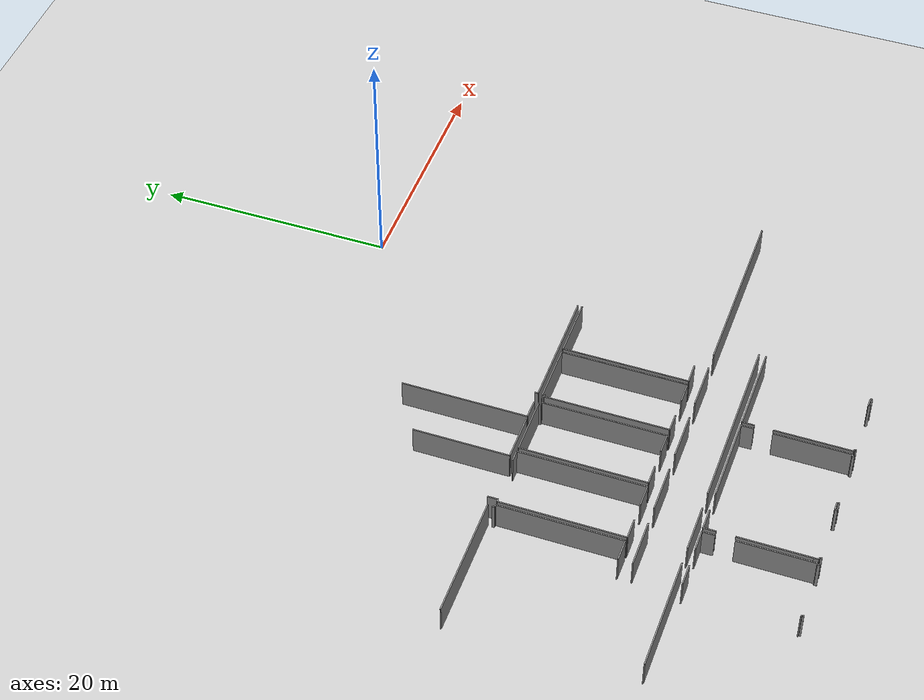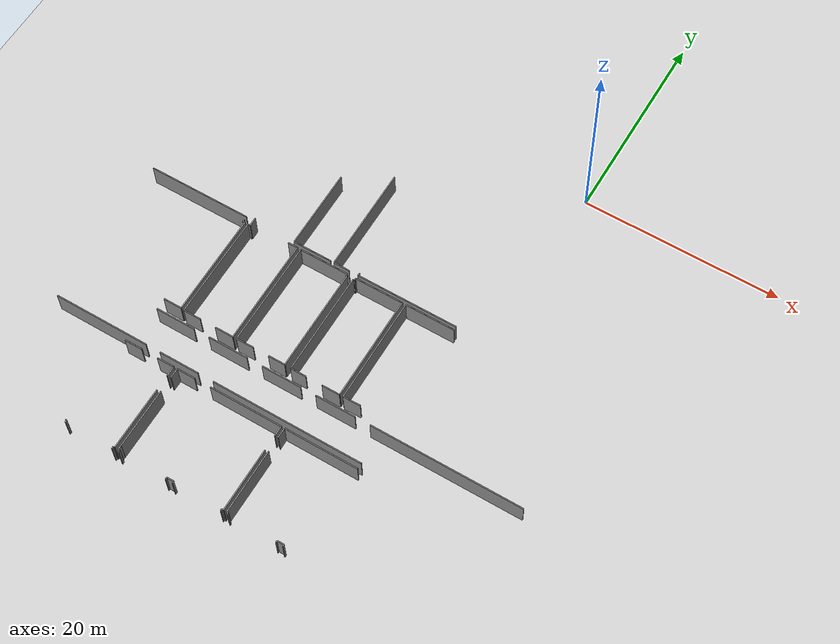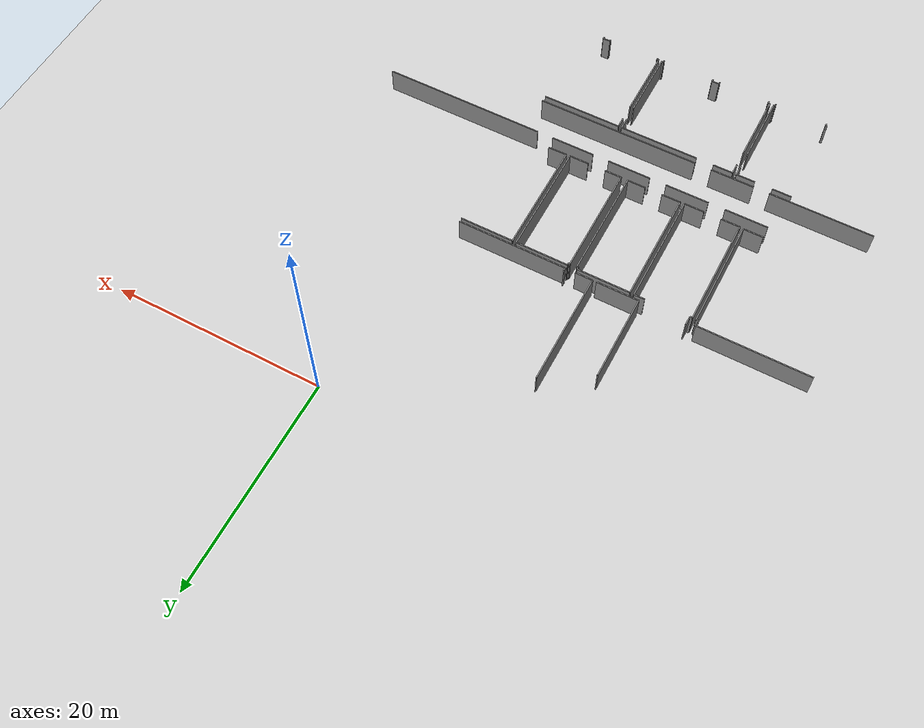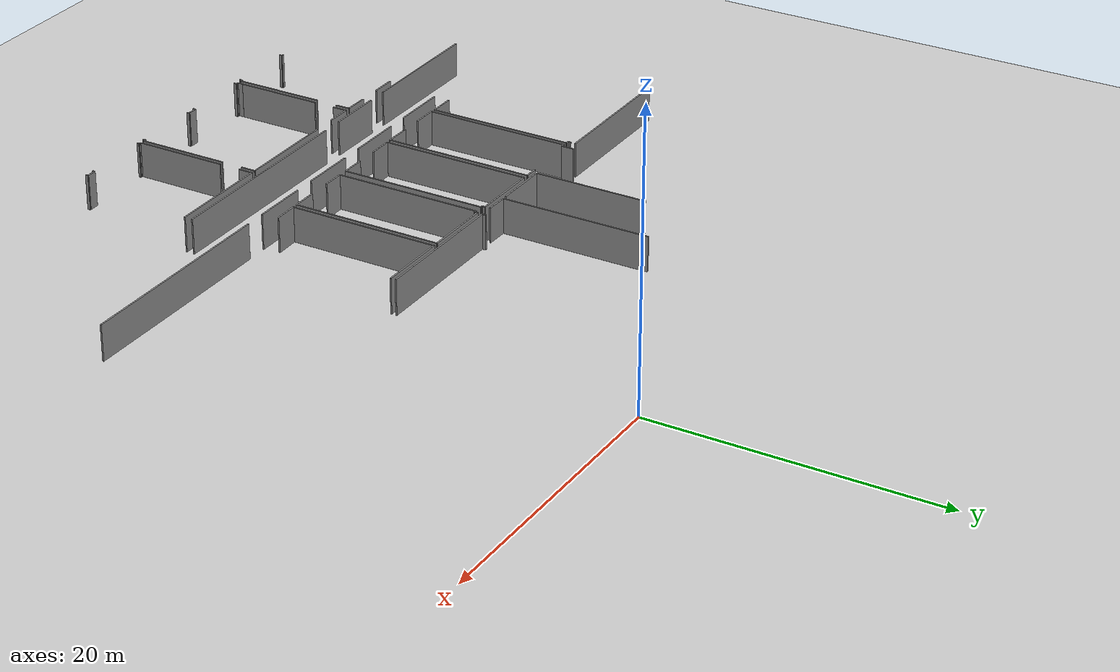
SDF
<sdf version="1.6">
 <world name="default">
  <model name="ground_plane">
   <static>1</static>
   <link name="link">
    <collision name="collision">
     <geometry><plane><normal>0 0 1</normal><size>100 100</size></plane></geometry>
     <surface><friction><ode><mu>100</mu><mu2>50</mu2></ode></friction></surface>
    </collision>
    <visual name="visual">
     <cast_shadows>0</cast_shadows>
     <geometry><plane><normal>0 0 1</normal><size>100 100</size></plane></geometry>
     <material>
      <script><uri>file://media/materials/scripts/gazebo.material</uri><name>Gazebo/Grey</name></script>
     </material>
    </visual>
   </link>
  </model>
  <model name="50015847">
   <static>1</static>
   <link name="Wall_1012">
    <collision name="Wall_1012_Collision">
     <geometry><box><size>10.5931255402 0.1 2.5</size></box></geometry>
     <pose>5.29656277012 0 1.25 0 0 0</pose>
    </collision>
    <visual name="Wall_1012_Visual">
     <pose>5.29656277012 0 1.25 0 0 0</pose>
     <geometry><box><size>10.5931255402 0.1 2.5</size></box></geometry>
     <material>
      <script><uri>file://media/materials/scripts/gazebo.material</uri><name>Gazebo/Grey</name></script>
      <ambient>1 1 1 1</ambient>
     </material>
    </visual>
    <pose>116.273452992 -62.5344485687 0 0 0 1.57079632679</pose>
   </link>
   <link name="Wall_1020">
    <collision name="Wall_1020_Collision">
     <geometry><box><size>10.2867748004 0.1 2.5</size></box></geometry>
     <pose>5.14338740021 0 1.25 0 0 0</pose>
    </collision>
    <visual name="Wall_1020_Visual">
     <pose>5.14338740021 0 1.25 0 0 0</pose>
     <geometry><box><size>10.2867748004 0.1 2.5</size></box></geometry>
     <material>
      <script><uri>file://media/materials/scripts/gazebo.material</uri><name>Gazebo/Grey</name></script>
      <ambient>1 1 1 1</ambient>
     </material>
    </visual>
    <pose>129.155692276 -62.5626684293 0 0 0 3.14159265359</pose>
   </link>
   <link name="Wall_1021">
    <collision name="Wall_1021_Collision">
     <geometry><box><size>0.283724004678 0.1 2.5</size></box></geometry>
     <pose>0.141862002339 0 1.25 0 0 0</pose>
    </collision>
    <visual name="Wall_1021_Visual">
     <pose>0.141862002339 0 1.25 0 0 0</pose>
     <geometry><box><size>0.283724004678 0.1 2.5</size></box></geometry>
     <material>
      <script><uri>file://media/materials/scripts/gazebo.material</uri><name>Gazebo/Grey</name></script>
      <ambient>1 1 1 1</ambient>
     </material>
    </visual>
    <pose>118.868917476 -62.5626684293 0 0 0 1.57079632679</pose>
   </link>
   <link name="Wall_1024">
    <collision name="Wall_1024_Collision">
     <geometry><box><size>1.63395369529 0.1 2.5</size></box></geometry>
     <pose>0.816976847647 0 1.25 0 0 0</pose>
    </collision>
    <visual name="Wall_1024_Visual">
     <pose>0.816976847647 0 1.25 0 0 0</pose>
     <geometry><box><size>1.63395369529 0.1 2.5</size></box></geometry>
     <material>
      <script><uri>file://media/materials/scripts/gazebo.material</uri><name>Gazebo/Grey</name></script>
      <ambient>1 1 1 1</ambient>
     </material>
    </visual>
    <pose>117.907154116 -62.5631768953 0 0 0 3.12400965411</pose>
   </link>
   <link name="Wall_1031">
    <collision name="Wall_1031_Collision">
     <geometry><box><size>8.06884629074 0.1 2.5</size></box></geometry>
     <pose>4.03442314537 0 1.25 0 0 0</pose>
    </collision>
    <visual name="Wall_1031_Visual">
     <pose>4.03442314537 0 1.25 0 0 0</pose>
     <geometry><box><size>8.06884629074 0.1 2.5</size></box></geometry>
     <material>
      <script><uri>file://media/materials/scripts/gazebo.material</uri><name>Gazebo/Grey</name></script>
      <ambient>1 1 1 1</ambient>
     </material>
    </visual>
    <pose>111.981237606 -62.5469059846 0 0 0 1.57079632679</pose>
   </link>
   <link name="Wall_1035">
    <collision name="Wall_1035_Collision">
     <geometry><box><size>3.94340786998 0.1 2.5</size></box></geometry>
     <pose>1.97170393499 0 1.25 0 0 0</pose>
    </collision>
    <visual name="Wall_1035_Visual">
     <pose>1.97170393499 0 1.25 0 0 0</pose>
     <geometry><box><size>3.94340786998 0.1 2.5</size></box></geometry>
     <material>
      <script><uri>file://media/materials/scripts/gazebo.material</uri><name>Gazebo/Grey</name></script>
      <ambient>1 1 1 1</ambient>
     </material>
    </visual>
    <pose>115.924645345 -62.5458890527 0 0 0 -3.14133477209</pose>
   </link>
   <link name="Wall_1042">
    <collision name="Wall_1042_Collision">
     <geometry><box><size>10.4080439315 0.1 2.5</size></box></geometry>
     <pose>5.20402196573 0 1.25 0 0 0</pose>
    </collision>
    <visual name="Wall_1042_Visual">
     <pose>5.20402196573 0 1.25 0 0 0</pose>
     <geometry><box><size>10.4080439315 0.1 2.5</size></box></geometry>
     <material>
      <script><uri>file://media/materials/scripts/gazebo.material</uri><name>Gazebo/Grey</name></script>
      <ambient>1 1 1 1</ambient>
     </material>
    </visual>
    <pose>106.791834037 -62.5560583719 0 0 0 3.14159265359</pose>
   </link>
   <link name="Wall_1344">
    <collision name="Wall_1344_Collision">
     <geometry><box><size>1.80454568567 0.1 2.5</size></box></geometry>
     <pose>0.902272842833 0 1.25 0 0 0</pose>
    </collision>
    <visual name="Wall_1344_Visual">
     <pose>0.902272842833 0 1.25 0 0 0</pose>
     <geometry><box><size>1.80454568567 0.1 2.5</size></box></geometry>
     <material>
      <script><uri>file://media/materials/scripts/gazebo.material</uri><name>Gazebo/Grey</name></script>
      <ambient>1 1 1 1</ambient>
     </material>
    </visual>
    <pose>104.546194132 -78.6472263182 0 0 0 0.0</pose>
   </link>
   <link name="Wall_1345">
    <collision name="Wall_1345_Collision">
     <geometry><box><size>1.75954644837 0.1 2.5</size></box></geometry>
     <pose>0.879773224183 0 1.25 0 0 0</pose>
    </collision>
    <visual name="Wall_1345_Visual">
     <pose>0.879773224183 0 1.25 0 0 0</pose>
     <geometry><box><size>1.75954644837 0.1 2.5</size></box></geometry>
     <material>
      <script><uri>file://media/materials/scripts/gazebo.material</uri><name>Gazebo/Grey</name></script>
      <ambient>1 1 1 1</ambient>
     </material>
    </visual>
    <pose>108.003508415 -78.6472263182 0 0 0 0.0</pose>
   </link>
   <link name="Wall_1346">
    <collision name="Wall_1346_Collision">
     <geometry><box><size>1.04718564092 0.1 2.5</size></box></geometry>
     <pose>0.523592820461 0 1.25 0 0 0</pose>
    </collision>
    <visual name="Wall_1346_Visual">
     <pose>0.523592820461 0 1.25 0 0 0</pose>
     <geometry><box><size>1.04718564092 0.1 2.5</size></box></geometry>
     <material>
      <script><uri>file://media/materials/scripts/gazebo.material</uri><name>Gazebo/Grey</name></script>
      <ambient>1 1 1 1</ambient>
     </material>
    </visual>
    <pose>109.763054863 -78.6472263182 0 0 0 -1.57079632679</pose>
   </link>
   <link name="Wall_1347">
    <collision name="Wall_1347_Collision">
     <geometry><box><size>6.37234962119 0.1 2.5</size></box></geometry>
     <pose>3.1861748106 0 1.25 0 0 0</pose>
    </collision>
    <visual name="Wall_1347_Visual">
     <pose>3.1861748106 0 1.25 0 0 0</pose>
     <geometry><box><size>6.37234962119 0.1 2.5</size></box></geometry>
     <material>
      <script><uri>file://media/materials/scripts/gazebo.material</uri><name>Gazebo/Grey</name></script>
      <ambient>1 1 1 1</ambient>
     </material>
    </visual>
    <pose>109.763054863 -81.2520974221 0 0 0 -1.57079632679</pose>
   </link>
   <link name="Wall_1348">
    <collision name="Wall_1348_Collision">
     <geometry><box><size>0.142116235318 0.1 2.5</size></box></geometry>
     <pose>0.071058117659 0 1.25 0 0 0</pose>
    </collision>
    <visual name="Wall_1348_Visual">
     <pose>0.071058117659 0 1.25 0 0 0</pose>
     <geometry><box><size>0.142116235318 0.1 2.5</size></box></geometry>
     <material>
      <script><uri>file://media/materials/scripts/gazebo.material</uri><name>Gazebo/Grey</name></script>
      <ambient>1 1 1 1</ambient>
     </material>
    </visual>
    <pose>109.763054863 -87.6244470433 0 0 0 3.14159265359</pose>
   </link>
   <link name="Wall_1349">
    <collision name="Wall_1349_Collision">
     <geometry><box><size>0.223470788631 0.1 2.5</size></box></geometry>
     <pose>0.111735394315 0 1.25 0 0 0</pose>
    </collision>
    <visual name="Wall_1349_Visual">
     <pose>0.111735394315 0 1.25 0 0 0</pose>
     <geometry><box><size>0.223470788631 0.1 2.5</size></box></geometry>
     <material>
      <script><uri>file://media/materials/scripts/gazebo.material</uri><name>Gazebo/Grey</name></script>
      <ambient>1 1 1 1</ambient>
     </material>
    </visual>
    <pose>109.620938628 -87.6244470433 0 0 0 -1.57079632679</pose>
   </link>
   <link name="Wall_1350">
    <collision name="Wall_1350_Collision">
     <geometry><box><size>0.186098540703 0.1 2.5</size></box></geometry>
     <pose>0.0930492703513 0 1.25 0 0 0</pose>
    </collision>
    <visual name="Wall_1350_Visual">
     <pose>0.0930492703513 0 1.25 0 0 0</pose>
     <geometry><box><size>0.186098540703 0.1 2.5</size></box></geometry>
     <material>
      <script><uri>file://media/materials/scripts/gazebo.material</uri><name>Gazebo/Grey</name></script>
      <ambient>1 1 1 1</ambient>
     </material>
    </visual>
    <pose>104.699242386 -87.8479178319 0 0 0 1.57079632679</pose>
   </link>
   <link name="Wall_1351">
    <collision name="Wall_1351_Collision">
     <geometry><box><size>0.154602082631 0.1 2.5</size></box></geometry>
     <pose>0.0773010413155 0 1.25 0 0 0</pose>
    </collision>
    <visual name="Wall_1351_Visual">
     <pose>0.0773010413155 0 1.25 0 0 0</pose>
     <geometry><box><size>0.154602082631 0.1 2.5</size></box></geometry>
     <material>
      <script><uri>file://media/materials/scripts/gazebo.material</uri><name>Gazebo/Grey</name></script>
      <ambient>1 1 1 1</ambient>
     </material>
    </visual>
    <pose>104.699242386 -87.6618192912 0 0 0 2.99969559899</pose>
   </link>
   <link name="Wall_1352">
    <collision name="Wall_1352_Collision">
     <geometry><box><size>6.02379620684 0.1 2.5</size></box></geometry>
     <pose>3.01189810342 0 1.25 0 0 0</pose>
    </collision>
    <visual name="Wall_1352_Visual">
     <pose>3.01189810342 0 1.25 0 0 0</pose>
     <geometry><box><size>6.02379620684 0.1 2.5</size></box></geometry>
     <material>
      <script><uri>file://media/materials/scripts/gazebo.material</uri><name>Gazebo/Grey</name></script>
      <ambient>1 1 1 1</ambient>
     </material>
    </visual>
    <pose>110.138811207 -87.2158946459 0 0 0 1.57079632679</pose>
   </link>
   <link name="Wall_1353">
    <collision name="Wall_1353_Collision">
     <geometry><box><size>1.02710123557 0.1 2.5</size></box></geometry>
     <pose>0.513550617786 0 1.25 0 0 0</pose>
    </collision>
    <visual name="Wall_1353_Visual">
     <pose>0.513550617786 0 1.25 0 0 0</pose>
     <geometry><box><size>1.02710123557 0.1 2.5</size></box></geometry>
     <material>
      <script><uri>file://media/materials/scripts/gazebo.material</uri><name>Gazebo/Grey</name></script>
      <ambient>1 1 1 1</ambient>
     </material>
    </visual>
    <pose>110.138811207 -79.6725479229 0 0 0 1.57079632679</pose>
   </link>
   <link name="Wall_1354">
    <collision name="Wall_1354_Collision">
     <geometry><box><size>1.8503076219 0.1 2.5</size></box></geometry>
     <pose>0.925153810952 0 1.25 0 0 0</pose>
    </collision>
    <visual name="Wall_1354_Visual">
     <pose>0.925153810952 0 1.25 0 0 0</pose>
     <geometry><box><size>1.8503076219 0.1 2.5</size></box></geometry>
     <material>
      <script><uri>file://media/materials/scripts/gazebo.material</uri><name>Gazebo/Grey</name></script>
      <ambient>1 1 1 1</ambient>
     </material>
    </visual>
    <pose>110.138811207 -78.6454466873 0 0 0 0.0</pose>
   </link>
   <link name="Wall_1355">
    <collision name="Wall_1355_Collision">
     <geometry><box><size>7.40478974933 0.1 2.5</size></box></geometry>
     <pose>3.70239487466 0 1.25 0 0 0</pose>
    </collision>
    <visual name="Wall_1355_Visual">
     <pose>3.70239487466 0 1.25 0 0 0</pose>
     <geometry><box><size>7.40478974933 0.1 2.5</size></box></geometry>
     <material>
      <script><uri>file://media/materials/scripts/gazebo.material</uri><name>Gazebo/Grey</name></script>
      <ambient>1 1 1 1</ambient>
     </material>
    </visual>
    <pose>113.627650379 -78.6454466873 0 0 0 0.0</pose>
   </link>
   <link name="Wall_1356">
    <collision name="Wall_1356_Collision">
     <geometry><box><size>1.05430416434 0.1 2.5</size></box></geometry>
     <pose>0.527152082168 0 1.25 0 0 0</pose>
    </collision>
    <visual name="Wall_1356_Visual">
     <pose>0.527152082168 0 1.25 0 0 0</pose>
     <geometry><box><size>1.05430416434 0.1 2.5</size></box></geometry>
     <material>
      <script><uri>file://media/materials/scripts/gazebo.material</uri><name>Gazebo/Grey</name></script>
      <ambient>1 1 1 1</ambient>
     </material>
    </visual>
    <pose>121.032440128 -78.6454466873 0 0 0 -1.57079632679</pose>
   </link>
   <link name="Wall_1357">
    <collision name="Wall_1357_Collision">
     <geometry><box><size>6.40438297656 0.1 2.5</size></box></geometry>
     <pose>3.20219148828 0 1.25 0 0 0</pose>
    </collision>
    <visual name="Wall_1357_Visual">
     <pose>3.20219148828 0 1.25 0 0 0</pose>
     <geometry><box><size>6.40438297656 0.1 2.5</size></box></geometry>
     <material>
      <script><uri>file://media/materials/scripts/gazebo.material</uri><name>Gazebo/Grey</name></script>
      <ambient>1 1 1 1</ambient>
     </material>
    </visual>
    <pose>121.032440128 -81.228962221 0 0 0 -1.57079632679</pose>
   </link>
   <link name="Wall_1358">
    <collision name="Wall_1358_Collision">
     <geometry><box><size>0.177200386434 0.1 2.5</size></box></geometry>
     <pose>0.0886001932171 0 1.25 0 0 0</pose>
    </collision>
    <visual name="Wall_1358_Visual">
     <pose>0.0886001932171 0 1.25 0 0 0</pose>
     <geometry><box><size>0.177200386434 0.1 2.5</size></box></geometry>
     <material>
      <script><uri>file://media/materials/scripts/gazebo.material</uri><name>Gazebo/Grey</name></script>
      <ambient>1 1 1 1</ambient>
     </material>
    </visual>
    <pose>121.032440128 -87.6333451975 0 0 0 3.14159265359</pose>
   </link>
   <link name="Wall_1359">
    <collision name="Wall_1359_Collision">
     <geometry><box><size>0.19525092795 0.1 2.5</size></box></geometry>
     <pose>0.0976254639752 0 1.25 0 0 0</pose>
    </collision>
    <visual name="Wall_1359_Visual">
     <pose>0.0976254639752 0 1.25 0 0 0</pose>
     <geometry><box><size>0.19525092795 0.1 2.5</size></box></geometry>
     <material>
      <script><uri>file://media/materials/scripts/gazebo.material</uri><name>Gazebo/Grey</name></script>
      <ambient>1 1 1 1</ambient>
     </material>
    </visual>
    <pose>120.855239742 -87.6333451975 0 0 0 -1.57079632679</pose>
   </link>
   <link name="Wall_1360">
    <collision name="Wall_1360_Collision">
     <geometry><box><size>0.207454110947 0.1 2.5</size></box></geometry>
     <pose>0.103727055474 0 1.25 0 0 0</pose>
    </collision>
    <visual name="Wall_1360_Visual">
     <pose>0.103727055474 0 1.25 0 0 0</pose>
     <geometry><box><size>0.207454110947 0.1 2.5</size></box></geometry>
     <material>
      <script><uri>file://media/materials/scripts/gazebo.material</uri><name>Gazebo/Grey</name></script>
      <ambient>1 1 1 1</ambient>
     </material>
    </visual>
    <pose>115.902781309 -87.8285961255 0 0 0 1.57079632679</pose>
   </link>
   <link name="Wall_1361">
    <collision name="Wall_1361_Collision">
     <geometry><box><size>0.697615294656 0.1 2.5</size></box></geometry>
     <pose>0.348807647328 0 1.25 0 0 0</pose>
    </collision>
    <visual name="Wall_1361_Visual">
     <pose>0.348807647328 0 1.25 0 0 0</pose>
     <geometry><box><size>0.697615294656 0.1 2.5</size></box></geometry>
     <material>
      <script><uri>file://media/materials/scripts/gazebo.material</uri><name>Gazebo/Grey</name></script>
      <ambient>1 1 1 1</ambient>
     </material>
    </visual>
    <pose>115.902781309 -87.6211420145 0 0 0 3.14159265359</pose>
   </link>
   <link name="Wall_1362">
    <collision name="Wall_1362_Collision">
     <geometry><box><size>0.213555702446 0.1 2.5</size></box></geometry>
     <pose>0.106777851223 0 1.25 0 0 0</pose>
    </collision>
    <visual name="Wall_1362_Visual">
     <pose>0.106777851223 0 1.25 0 0 0</pose>
     <geometry><box><size>0.213555702446 0.1 2.5</size></box></geometry>
     <material>
      <script><uri>file://media/materials/scripts/gazebo.material</uri><name>Gazebo/Grey</name></script>
      <ambient>1 1 1 1</ambient>
     </material>
    </visual>
    <pose>115.205166014 -87.6211420145 0 0 0 -1.57079632679</pose>
   </link>
   <link name="Wall_1363">
    <collision name="Wall_1363_Collision">
     <geometry><box><size>0.205674480094 0.1 2.5</size></box></geometry>
     <pose>0.102837240047 0 1.25 0 0 0</pose>
    </collision>
    <visual name="Wall_1363_Visual">
     <pose>0.102837240047 0 1.25 0 0 0</pose>
     <geometry><box><size>0.205674480094 0.1 2.5</size></box></geometry>
     <material>
      <script><uri>file://media/materials/scripts/gazebo.material</uri><name>Gazebo/Grey</name></script>
      <ambient>1 1 1 1</ambient>
     </material>
    </visual>
    <pose>110.316774292 -87.834697717 0 0 0 1.57079632679</pose>
   </link>
   <link name="Wall_1364">
    <collision name="Wall_1364_Collision">
     <geometry><box><size>0.185844307724 0.1 2.5</size></box></geometry>
     <pose>0.0929221538618 0 1.25 0 0 0</pose>
    </collision>
    <visual name="Wall_1364_Visual">
     <pose>0.0929221538618 0 1.25 0 0 0</pose>
     <geometry><box><size>0.185844307724 0.1 2.5</size></box></geometry>
     <material>
      <script><uri>file://media/materials/scripts/gazebo.material</uri><name>Gazebo/Grey</name></script>
      <ambient>1 1 1 1</ambient>
     </material>
    </visual>
    <pose>110.316774292 -87.6290232369 0 0 0 3.14159265359</pose>
   </link>
   <link name="Wall_1365">
    <collision name="Wall_1365_Collision">
     <geometry><box><size>0.413203758939 0.1 2.5</size></box></geometry>
     <pose>0.206601879469 0 1.25 0 0 0</pose>
    </collision>
    <visual name="Wall_1365_Visual">
     <pose>0.206601879469 0 1.25 0 0 0</pose>
     <geometry><box><size>0.413203758939 0.1 2.5</size></box></geometry>
     <material>
      <script><uri>file://media/materials/scripts/gazebo.material</uri><name>Gazebo/Grey</name></script>
      <ambient>1 1 1 1</ambient>
     </material>
    </visual>
    <pose>110.130929984 -87.6290232369 0 0 0 1.55172171743</pose>
   </link>
   <link name="Wall_1366">
    <collision name="Wall_1366_Collision">
     <geometry><box><size>6.45802613515 0.1 2.5</size></box></geometry>
     <pose>3.22901306758 0 1.25 0 0 0</pose>
    </collision>
    <visual name="Wall_1366_Visual">
     <pose>3.22901306758 0 1.25 0 0 0</pose>
     <geometry><box><size>6.45802613515 0.1 2.5</size></box></geometry>
     <material>
      <script><uri>file://media/materials/scripts/gazebo.material</uri><name>Gazebo/Grey</name></script>
      <ambient>1 1 1 1</ambient>
     </material>
    </visual>
    <pose>121.364976865 -87.6391925561 0 0 0 1.57079632679</pose>
   </link>
   <link name="Wall_1367">
    <collision name="Wall_1367_Collision">
     <geometry><box><size>1.02633853663 0.1 2.5</size></box></geometry>
     <pose>0.513169268317 0 1.25 0 0 0</pose>
    </collision>
    <visual name="Wall_1367_Visual">
     <pose>0.513169268317 0 1.25 0 0 0</pose>
     <geometry><box><size>1.02633853663 0.1 2.5</size></box></geometry>
     <material>
      <script><uri>file://media/materials/scripts/gazebo.material</uri><name>Gazebo/Grey</name></script>
      <ambient>1 1 1 1</ambient>
     </material>
    </visual>
    <pose>121.364976865 -79.6766156506 0 0 0 1.57079632679</pose>
   </link>
   <link name="Wall_1368">
    <collision name="Wall_1368_Collision">
     <geometry><box><size>7.45004321961 0.1 2.5</size></box></geometry>
     <pose>3.7250216098 0 1.25 0 0 0</pose>
    </collision>
    <visual name="Wall_1368_Visual">
     <pose>3.7250216098 0 1.25 0 0 0</pose>
     <geometry><box><size>7.45004321961 0.1 2.5</size></box></geometry>
     <material>
      <script><uri>file://media/materials/scripts/gazebo.material</uri><name>Gazebo/Grey</name></script>
      <ambient>1 1 1 1</ambient>
     </material>
    </visual>
    <pose>121.364976865 -78.6502771139 0 0 0 0.0</pose>
   </link>
   <link name="Wall_1374">
    <collision name="Wall_1374_Collision">
     <geometry><box><size>0.194233996034 0.1 2.5</size></box></geometry>
     <pose>0.097116998017 0 1.25 0 0 0</pose>
    </collision>
    <visual name="Wall_1374_Visual">
     <pose>0.097116998017 0 1.25 0 0 0</pose>
     <geometry><box><size>0.194233996034 0.1 2.5</size></box></geometry>
     <material>
      <script><uri>file://media/materials/scripts/gazebo.material</uri><name>Gazebo/Grey</name></script>
      <ambient>1 1 1 1</ambient>
     </material>
    </visual>
    <pose>127.121828444 -87.8329180861 0 0 0 1.57079632679</pose>
   </link>
   <link name="Wall_1375">
    <collision name="Wall_1375_Collision">
     <geometry><box><size>0.693801799969 0.1 2.5</size></box></geometry>
     <pose>0.346900899985 0 1.25 0 0 0</pose>
    </collision>
    <visual name="Wall_1375_Visual">
     <pose>0.346900899985 0 1.25 0 0 0</pose>
     <geometry><box><size>0.693801799969 0.1 2.5</size></box></geometry>
     <material>
      <script><uri>file://media/materials/scripts/gazebo.material</uri><name>Gazebo/Grey</name></script>
      <ambient>1 1 1 1</ambient>
     </material>
    </visual>
    <pose>127.121828444 -87.6386840901 0 0 0 3.14159265359</pose>
   </link>
   <link name="Wall_1376">
    <collision name="Wall_1376_Collision">
     <geometry><box><size>0.185335841765 0.1 2.5</size></box></geometry>
     <pose>0.0926679208827 0 1.25 0 0 0</pose>
    </collision>
    <visual name="Wall_1376_Visual">
     <pose>0.0926679208827 0 1.25 0 0 0</pose>
     <geometry><box><size>0.185335841765 0.1 2.5</size></box></geometry>
     <material>
      <script><uri>file://media/materials/scripts/gazebo.material</uri><name>Gazebo/Grey</name></script>
      <ambient>1 1 1 1</ambient>
     </material>
    </visual>
    <pose>126.428026644 -87.6386840901 0 0 0 -1.57079632679</pose>
   </link>
   <link name="Wall_1377">
    <collision name="Wall_1377_Collision">
     <geometry><box><size>0.152031321503 0.1 2.5</size></box></geometry>
     <pose>0.0760156607515 0 1.25 0 0 0</pose>
    </collision>
    <visual name="Wall_1377_Visual">
     <pose>0.0760156607515 0 1.25 0 0 0</pose>
     <geometry><box><size>0.152031321503 0.1 2.5</size></box></geometry>
     <material>
      <script><uri>file://media/materials/scripts/gazebo.material</uri><name>Gazebo/Grey</name></script>
      <ambient>1 1 1 1</ambient>
     </material>
    </visual>
    <pose>121.543194183 -87.8240199319 0 0 0 1.57079632679</pose>
   </link>
   <link name="Wall_1378">
    <collision name="Wall_1378_Collision">
     <geometry><box><size>0.180505415162 0.1 2.5</size></box></geometry>
     <pose>0.0902527075812 0 1.25 0 0 0</pose>
    </collision>
    <visual name="Wall_1378_Visual">
     <pose>0.0902527075812 0 1.25 0 0 0</pose>
     <geometry><box><size>0.180505415162 0.1 2.5</size></box></geometry>
     <material>
      <script><uri>file://media/materials/scripts/gazebo.material</uri><name>Gazebo/Grey</name></script>
      <ambient>1 1 1 1</ambient>
     </material>
    </visual>
    <pose>121.543194183 -87.6719886104 0 0 0 3.14159265359</pose>
   </link>
   <link name="Wall_1379">
    <collision name="Wall_1379_Collision">
     <geometry><box><size>0.0328757747428 0.1 2.5</size></box></geometry>
     <pose>0.0164378873714 0 1.25 0 0 0</pose>
    </collision>
    <visual name="Wall_1379_Visual">
     <pose>0.0164378873714 0 1.25 0 0 0</pose>
     <geometry><box><size>0.0328757747428 0.1 2.5</size></box></geometry>
     <material>
      <script><uri>file://media/materials/scripts/gazebo.material</uri><name>Gazebo/Grey</name></script>
      <ambient>1 1 1 1</ambient>
     </material>
    </visual>
    <pose>121.362688768 -87.6719886104 0 0 0 1.50114175307</pose>
   </link>
   <link name="Wall_1628">
    <collision name="Wall_1628_Collision">
     <geometry><box><size>10.5816850562 0.1 2.5</size></box></geometry>
     <pose>5.29084252809 0 1.25 0 0 0</pose>
    </collision>
    <visual name="Wall_1628_Visual">
     <pose>5.29084252809 0 1.25 0 0 0</pose>
     <geometry><box><size>10.5816850562 0.1 2.5</size></box></geometry>
     <material>
      <script><uri>file://media/materials/scripts/gazebo.material</uri><name>Gazebo/Grey</name></script>
      <ambient>1 1 1 1</ambient>
     </material>
    </visual>
    <pose>124.128997814 -73.5048558499 0 0 0 1.57079632679</pose>
   </link>
   <link name="Wall_1629">
    <collision name="Wall_1629_Collision">
     <geometry><box><size>5.03966034474 0.1 2.5</size></box></geometry>
     <pose>2.51983017237 0 1.25 0 0 0</pose>
    </collision>
    <visual name="Wall_1629_Visual">
     <pose>2.51983017237 0 1.25 0 0 0</pose>
     <geometry><box><size>5.03966034474 0.1 2.5</size></box></geometry>
     <material>
      <script><uri>file://media/materials/scripts/gazebo.material</uri><name>Gazebo/Grey</name></script>
      <ambient>1 1 1 1</ambient>
     </material>
    </visual>
    <pose>124.128997814 -62.9231707937 0 0 0 0.0</pose>
   </link>
   <link name="Wall_1635">
    <collision name="Wall_1635_Collision">
     <geometry><box><size>1.75711557878 0.1 2.5</size></box></geometry>
     <pose>0.878557789391 0 1.25 0 0 0</pose>
    </collision>
    <visual name="Wall_1635_Visual">
     <pose>0.878557789391 0 1.25 0 0 0</pose>
     <geometry><box><size>1.75711557878 0.1 2.5</size></box></geometry>
     <material>
      <script><uri>file://media/materials/scripts/gazebo.material</uri><name>Gazebo/Grey</name></script>
      <ambient>1 1 1 1</ambient>
     </material>
    </visual>
    <pose>125.885747699 -73.4690089998 0 0 0 -3.1211902751</pose>
   </link>
   <link name="Wall_1636">
    <collision name="Wall_1636_Collision">
     <geometry><box><size>10.3472822495 0.1 2.5</size></box></geometry>
     <pose>5.17364112473 0 1.25 0 0 0</pose>
    </collision>
    <visual name="Wall_1636_Visual">
     <pose>5.17364112473 0 1.25 0 0 0</pose>
     <geometry><box><size>10.3472822495 0.1 2.5</size></box></geometry>
     <material>
      <script><uri>file://media/materials/scripts/gazebo.material</uri><name>Gazebo/Grey</name></script>
      <ambient>1 1 1 1</ambient>
     </material>
    </visual>
    <pose>118.699089846 -73.4814664158 0 0 0 1.57079632679</pose>
   </link>
   <link name="Wall_1637">
    <collision name="Wall_1637_Collision">
     <geometry><box><size>0.1472008949 0.1 2.5</size></box></geometry>
     <pose>0.07360044745 0 1.25 0 0 0</pose>
    </collision>
    <visual name="Wall_1637_Visual">
     <pose>0.07360044745 0 1.25 0 0 0</pose>
     <geometry><box><size>0.1472008949 0.1 2.5</size></box></geometry>
     <material>
      <script><uri>file://media/materials/scripts/gazebo.material</uri><name>Gazebo/Grey</name></script>
      <ambient>1 1 1 1</ambient>
     </material>
    </visual>
    <pose>118.699089846 -63.1341841664 0 0 0 0.0</pose>
   </link>
   <link name="Wall_1638">
    <collision name="Wall_1638_Collision">
     <geometry><box><size>0.20948797478 0.1 2.5</size></box></geometry>
     <pose>0.10474398739 0 1.25 0 0 0</pose>
    </collision>
    <visual name="Wall_1638_Visual">
     <pose>0.10474398739 0 1.25 0 0 0</pose>
     <geometry><box><size>0.20948797478 0.1 2.5</size></box></geometry>
     <material>
      <script><uri>file://media/materials/scripts/gazebo.material</uri><name>Gazebo/Grey</name></script>
      <ambient>1 1 1 1</ambient>
     </material>
    </visual>
    <pose>118.846290741 -63.1341841664 0 0 0 1.57079632679</pose>
   </link>
   <link name="Wall_1639">
    <collision name="Wall_1639_Collision">
     <geometry><box><size>4.91534041796 0.1 2.5</size></box></geometry>
     <pose>2.45767020898 0 1.25 0 0 0</pose>
    </collision>
    <visual name="Wall_1639_Visual">
     <pose>2.45767020898 0 1.25 0 0 0</pose>
     <geometry><box><size>4.91534041796 0.1 2.5</size></box></geometry>
     <material>
      <script><uri>file://media/materials/scripts/gazebo.material</uri><name>Gazebo/Grey</name></script>
      <ambient>1 1 1 1</ambient>
     </material>
    </visual>
    <pose>118.846290741 -62.9246961916 0 0 0 0.0</pose>
   </link>
   <link name="Wall_1640">
    <collision name="Wall_1640_Collision">
     <geometry><box><size>10.5882951136 0.1 2.5</size></box></geometry>
     <pose>5.29414755682 0 1.25 0 0 0</pose>
    </collision>
    <visual name="Wall_1640_Visual">
     <pose>5.29414755682 0 1.25 0 0 0</pose>
     <geometry><box><size>10.5882951136 0.1 2.5</size></box></geometry>
     <material>
      <script><uri>file://media/materials/scripts/gazebo.material</uri><name>Gazebo/Grey</name></script>
      <ambient>1 1 1 1</ambient>
     </material>
    </visual>
    <pose>123.761631159 -62.9246961916 0 0 0 -1.57079632679</pose>
   </link>
   <link name="Wall_1641">
    <collision name="Wall_1641_Collision">
     <geometry><box><size>1.80708801546 0.1 2.5</size></box></geometry>
     <pose>0.903544007729 0 1.25 0 0 0</pose>
    </collision>
    <visual name="Wall_1641_Visual">
     <pose>0.903544007729 0 1.25 0 0 0</pose>
     <geometry><box><size>1.80708801546 0.1 2.5</size></box></geometry>
     <material>
      <script><uri>file://media/materials/scripts/gazebo.material</uri><name>Gazebo/Grey</name></script>
      <ambient>1 1 1 1</ambient>
     </material>
    </visual>
    <pose>123.761631159 -73.5129913052 0 0 0 3.14159265359</pose>
   </link>
   <link name="Wall_1642">
    <collision name="Wall_1642_Collision">
     <geometry><box><size>1.58260029491 0.1 2.5</size></box></geometry>
     <pose>0.791300147455 0 1.25 0 0 0</pose>
    </collision>
    <visual name="Wall_1642_Visual">
     <pose>0.791300147455 0 1.25 0 0 0</pose>
     <geometry><box><size>1.58260029491 0.1 2.5</size></box></geometry>
     <material>
      <script><uri>file://media/materials/scripts/gazebo.material</uri><name>Gazebo/Grey</name></script>
      <ambient>1 1 1 1</ambient>
     </material>
    </visual>
    <pose>120.277113947 -73.5129913052 0 0 0 3.14159265359</pose>
   </link>
   <link name="Wall_1643">
    <collision name="Wall_1643_Collision">
     <geometry><box><size>0.0318553009766 0.1 2.5</size></box></geometry>
     <pose>0.0159276504883 0 1.25 0 0 0</pose>
    </collision>
    <visual name="Wall_1643_Visual">
     <pose>0.0159276504883 0 1.25 0 0 0</pose>
     <geometry><box><size>0.0318553009766 0.1 2.5</size></box></geometry>
     <material>
      <script><uri>file://media/materials/scripts/gazebo.material</uri><name>Gazebo/Grey</name></script>
      <ambient>1 1 1 1</ambient>
     </material>
    </visual>
    <pose>118.694513652 -73.5129913052 0 0 0 1.42664193968</pose>
   </link>
   <link name="Wall_1644">
    <collision name="Wall_1644_Collision">
     <geometry><box><size>10.5694818732 0.1 2.5</size></box></geometry>
     <pose>5.28474093659 0 1.25 0 0 0</pose>
    </collision>
    <visual name="Wall_1644_Visual">
     <pose>5.28474093659 0 1.25 0 0 0</pose>
     <geometry><box><size>10.5694818732 0.1 2.5</size></box></geometry>
     <material>
      <script><uri>file://media/materials/scripts/gazebo.material</uri><name>Gazebo/Grey</name></script>
      <ambient>1 1 1 1</ambient>
     </material>
    </visual>
    <pose>112.967153099 -73.4977373265 0 0 0 1.57079632679</pose>
   </link>
   <link name="Wall_1645">
    <collision name="Wall_1645_Collision">
     <geometry><box><size>4.94000101693 0.1 2.5</size></box></geometry>
     <pose>2.47000050847 0 1.25 0 0 0</pose>
    </collision>
    <visual name="Wall_1645_Visual">
     <pose>2.47000050847 0 1.25 0 0 0</pose>
     <geometry><box><size>4.94000101693 0.1 2.5</size></box></geometry>
     <material>
      <script><uri>file://media/materials/scripts/gazebo.material</uri><name>Gazebo/Grey</name></script>
      <ambient>1 1 1 1</ambient>
     </material>
    </visual>
    <pose>112.967153099 -62.9282554533 0 0 0 0.0</pose>
   </link>
   <link name="Wall_1646">
    <collision name="Wall_1646_Collision">
     <geometry><box><size>0.214064168404 0.1 2.5</size></box></geometry>
     <pose>0.107032084202 0 1.25 0 0 0</pose>
    </collision>
    <visual name="Wall_1646_Visual">
     <pose>0.107032084202 0 1.25 0 0 0</pose>
     <geometry><box><size>0.214064168404 0.1 2.5</size></box></geometry>
     <material>
      <script><uri>file://media/materials/scripts/gazebo.material</uri><name>Gazebo/Grey</name></script>
      <ambient>1 1 1 1</ambient>
     </material>
    </visual>
    <pose>117.907154116 -62.9282554533 0 0 0 -1.57079632679</pose>
   </link>
   <link name="Wall_1647">
    <collision name="Wall_1647_Collision">
     <geometry><box><size>0.142116235318 0.1 2.5</size></box></geometry>
     <pose>0.071058117659 0 1.25 0 0 0</pose>
    </collision>
    <visual name="Wall_1647_Visual">
     <pose>0.071058117659 0 1.25 0 0 0</pose>
     <geometry><box><size>0.142116235318 0.1 2.5</size></box></geometry>
     <material>
      <script><uri>file://media/materials/scripts/gazebo.material</uri><name>Gazebo/Grey</name></script>
      <ambient>1 1 1 1</ambient>
     </material>
    </visual>
    <pose>117.907154116 -63.1423196217 0 0 0 0.0</pose>
   </link>
   <link name="Wall_1648">
    <collision name="Wall_1648_Collision">
     <geometry><box><size>10.3444856867 0.1 2.5</size></box></geometry>
     <pose>5.17224284334 0 1.25 0 0 0</pose>
    </collision>
    <visual name="Wall_1648_Visual">
     <pose>5.17224284334 0 1.25 0 0 0</pose>
     <geometry><box><size>10.3444856867 0.1 2.5</size></box></geometry>
     <material>
      <script><uri>file://media/materials/scripts/gazebo.material</uri><name>Gazebo/Grey</name></script>
      <ambient>1 1 1 1</ambient>
     </material>
    </visual>
    <pose>118.049270351 -63.1423196217 0 0 0 -1.57079632679</pose>
   </link>
   <link name="Wall_1649">
    <collision name="Wall_1649_Collision">
     <geometry><box><size>1.7104794834 0.1 2.5</size></box></geometry>
     <pose>0.855239741699 0 1.25 0 0 0</pose>
    </collision>
    <visual name="Wall_1649_Visual">
     <pose>0.855239741699 0 1.25 0 0 0</pose>
     <geometry><box><size>1.7104794834 0.1 2.5</size></box></geometry>
     <material>
      <script><uri>file://media/materials/scripts/gazebo.material</uri><name>Gazebo/Grey</name></script>
      <ambient>1 1 1 1</ambient>
     </material>
    </visual>
    <pose>118.049270351 -73.4868053084 0 0 0 3.14159265359</pose>
   </link>
   <link name="Wall_1650">
    <collision name="Wall_1650_Collision">
     <geometry><box><size>1.7666987948 0.1 2.5</size></box></geometry>
     <pose>0.883349397398 0 1.25 0 0 0</pose>
    </collision>
    <visual name="Wall_1650_Visual">
     <pose>0.883349397398 0 1.25 0 0 0</pose>
     <geometry><box><size>1.7666987948 0.1 2.5</size></box></geometry>
     <material>
      <script><uri>file://media/materials/scripts/gazebo.material</uri><name>Gazebo/Grey</name></script>
      <ambient>1 1 1 1</ambient>
     </material>
    </visual>
    <pose>114.733818071 -73.4868053084 0 0 0 -3.13540479186</pose>
   </link>
   <link name="Wall_1651">
    <collision name="Wall_1651_Collision">
     <geometry><box><size>10.3605023644 0.1 2.5</size></box></geometry>
     <pose>5.18025118218 0 1.25 0 0 0</pose>
    </collision>
    <visual name="Wall_1651_Visual">
     <pose>5.18025118218 0 1.25 0 0 0</pose>
     <geometry><box><size>10.3605023644 0.1 2.5</size></box></geometry>
     <material>
      <script><uri>file://media/materials/scripts/gazebo.material</uri><name>Gazebo/Grey</name></script>
      <ambient>1 1 1 1</ambient>
     </material>
    </visual>
    <pose>107.334621447 -73.4939238318 0 0 0 1.57079632679</pose>
   </link>
   <link name="Wall_1652">
    <collision name="Wall_1652_Collision">
     <geometry><box><size>0.22931814715 0.1 2.5</size></box></geometry>
     <pose>0.114659073575 0 1.25 0 0 0</pose>
    </collision>
    <visual name="Wall_1652_Visual">
     <pose>0.114659073575 0 1.25 0 0 0</pose>
     <geometry><box><size>0.22931814715 0.1 2.5</size></box></geometry>
     <material>
      <script><uri>file://media/materials/scripts/gazebo.material</uri><name>Gazebo/Grey</name></script>
      <ambient>1 1 1 1</ambient>
     </material>
    </visual>
    <pose>107.334621447 -63.1334214674 0 0 0 0.0</pose>
   </link>
   <link name="Wall_1653">
    <collision name="Wall_1653_Collision">
     <geometry><box><size>0.860070168302 0.1 2.5</size></box></geometry>
     <pose>0.430035084151 0 1.25 0 0 0</pose>
    </collision>
    <visual name="Wall_1653_Visual">
     <pose>0.430035084151 0 1.25 0 0 0</pose>
     <geometry><box><size>0.860070168302 0.1 2.5</size></box></geometry>
     <material>
      <script><uri>file://media/materials/scripts/gazebo.material</uri><name>Gazebo/Grey</name></script>
      <ambient>1 1 1 1</ambient>
     </material>
    </visual>
    <pose>107.563939594 -63.1334214674 0 0 0 1.57079632679</pose>
   </link>
   <link name="Wall_1658">
    <collision name="Wall_1658_Collision">
     <geometry><box><size>0.995322113185 0.1 2.5</size></box></geometry>
     <pose>0.497661056592 0 1.25 0 0 0</pose>
    </collision>
    <visual name="Wall_1658_Visual">
     <pose>0.497661056592 0 1.25 0 0 0</pose>
     <geometry><box><size>0.995322113185 0.1 2.5</size></box></geometry>
     <material>
      <script><uri>file://media/materials/scripts/gazebo.material</uri><name>Gazebo/Grey</name></script>
      <ambient>1 1 1 1</ambient>
     </material>
    </visual>
    <pose>111.58641379 -62.9041033203 0 0 0 0.0</pose>
   </link>
   <link name="Wall_1659">
    <collision name="Wall_1659_Collision">
     <geometry><box><size>10.620836935 0.1 2.5</size></box></geometry>
     <pose>5.31041846748 0 1.25 0 0 0</pose>
    </collision>
    <visual name="Wall_1659_Visual">
     <pose>5.31041846748 0 1.25 0 0 0</pose>
     <geometry><box><size>10.620836935 0.1 2.5</size></box></geometry>
     <material>
      <script><uri>file://media/materials/scripts/gazebo.material</uri><name>Gazebo/Grey</name></script>
      <ambient>1 1 1 1</ambient>
     </material>
    </visual>
    <pose>112.581735903 -62.9041033203 0 0 0 -1.57079632679</pose>
   </link>
   <link name="Wall_1660">
    <collision name="Wall_1660_Collision">
     <geometry><box><size>1.86607006661 0.1 2.5</size></box></geometry>
     <pose>0.933035033305 0 1.25 0 0 0</pose>
    </collision>
    <visual name="Wall_1660_Visual">
     <pose>0.933035033305 0 1.25 0 0 0</pose>
     <geometry><box><size>1.86607006661 0.1 2.5</size></box></geometry>
     <material>
      <script><uri>file://media/materials/scripts/gazebo.material</uri><name>Gazebo/Grey</name></script>
      <ambient>1 1 1 1</ambient>
     </material>
    </visual>
    <pose>112.581735903 -73.5249402552 0 0 0 3.14159265359</pose>
   </link>
   <link name="Wall_1661">
    <collision name="Wall_1661_Collision">
     <geometry><box><size>1.77708852392 0.1 2.5</size></box></geometry>
     <pose>0.888544261962 0 1.25 0 0 0</pose>
    </collision>
    <visual name="Wall_1661_Visual">
     <pose>0.888544261962 0 1.25 0 0 0</pose>
     <geometry><box><size>1.77708852392 0.1 2.5</size></box></geometry>
     <material>
      <script><uri>file://media/materials/scripts/gazebo.material</uri><name>Gazebo/Grey</name></script>
      <ambient>1 1 1 1</ambient>
     </material>
    </visual>
    <pose>109.11247267 -73.5249402552 0 0 0 3.14159265359</pose>
   </link>
   <link name="Wall_1662">
    <collision name="Wall_1662_Collision">
     <geometry><box><size>0.0310257994792 0.1 2.5</size></box></geometry>
     <pose>0.0155128997396 0 1.25 0 0 0</pose>
    </collision>
    <visual name="Wall_1662_Visual">
     <pose>0.0155128997396 0 1.25 0 0 0</pose>
     <geometry><box><size>0.0310257994792 0.1 2.5</size></box></geometry>
     <material>
      <script><uri>file://media/materials/scripts/gazebo.material</uri><name>Gazebo/Grey</name></script>
      <ambient>1 1 1 1</ambient>
     </material>
    </visual>
    <pose>107.335384146 -73.5249402552 0 0 0 1.59538153616</pose>
   </link>
   <link name="Wall_1665">
    <collision name="Wall_1665_Collision">
     <geometry><box><size>0.209742207759 0.1 2.5</size></box></geometry>
     <pose>0.10487110388 0 1.25 0 0 0</pose>
    </collision>
    <visual name="Wall_1665_Visual">
     <pose>0.10487110388 0 1.25 0 0 0</pose>
     <geometry><box><size>0.209742207759 0.1 2.5</size></box></geometry>
     <material>
      <script><uri>file://media/materials/scripts/gazebo.material</uri><name>Gazebo/Grey</name></script>
      <ambient>1 1 1 1</ambient>
     </material>
    </visual>
    <pose>106.770224233 -62.9173234352 0 0 0 -1.57079632679</pose>
   </link>
   <link name="Wall_1666">
    <collision name="Wall_1666_Collision">
     <geometry><box><size>0.223979254589 0.1 2.5</size></box></geometry>
     <pose>0.111989627294 0 1.25 0 0 0</pose>
    </collision>
    <visual name="Wall_1666_Visual">
     <pose>0.111989627294 0 1.25 0 0 0</pose>
     <geometry><box><size>0.223979254589 0.1 2.5</size></box></geometry>
     <material>
      <script><uri>file://media/materials/scripts/gazebo.material</uri><name>Gazebo/Grey</name></script>
      <ambient>1 1 1 1</ambient>
     </material>
    </visual>
    <pose>106.770224233 -63.127065643 0 0 0 0.0</pose>
   </link>
   <link name="Wall_1667">
    <collision name="Wall_1667_Collision">
     <geometry><box><size>10.3416891239 0.1 2.5</size></box></geometry>
     <pose>5.17084456196 0 1.25 0 0 0</pose>
    </collision>
    <visual name="Wall_1667_Visual">
     <pose>5.17084456196 0 1.25 0 0 0</pose>
     <geometry><box><size>10.3416891239 0.1 2.5</size></box></geometry>
     <material>
      <script><uri>file://media/materials/scripts/gazebo.material</uri><name>Gazebo/Grey</name></script>
      <ambient>1 1 1 1</ambient>
     </material>
    </visual>
    <pose>106.994203488 -63.127065643 0 0 0 -1.57079632679</pose>
   </link>
   <link name="Wall_1668">
    <collision name="Wall_1668_Collision">
     <geometry><box><size>1.85742614532 0.1 2.5</size></box></geometry>
     <pose>0.92871307266 0 1.25 0 0 0</pose>
    </collision>
    <visual name="Wall_1668_Visual">
     <pose>0.92871307266 0 1.25 0 0 0</pose>
     <geometry><box><size>1.85742614532 0.1 2.5</size></box></geometry>
     <material>
      <script><uri>file://media/materials/scripts/gazebo.material</uri><name>Gazebo/Grey</name></script>
      <ambient>1 1 1 1</ambient>
     </material>
    </visual>
    <pose>106.994203488 -73.4687547669 0 0 0 3.14159265359</pose>
   </link>
   <link name="Wall_1690">
    <collision name="Wall_1690_Collision">
     <geometry><box><size>4.01891493365 0.1 2.5</size></box></geometry>
     <pose>2.00945746682 0 1.25 0 0 0</pose>
    </collision>
    <visual name="Wall_1690_Visual">
     <pose>2.00945746682 0 1.25 0 0 0</pose>
     <geometry><box><size>4.01891493365 0.1 2.5</size></box></geometry>
     <material>
      <script><uri>file://media/materials/scripts/gazebo.material</uri><name>Gazebo/Grey</name></script>
      <ambient>1 1 1 1</ambient>
     </material>
    </visual>
    <pose>105.165759902 -74.6194132303 0 0 0 0.0</pose>
   </link>
   <link name="Wall_1691">
    <collision name="Wall_1691_Collision">
     <geometry><box><size>4.07306655819 0.1 2.5</size></box></geometry>
     <pose>2.0365332791 0 1.25 0 0 0</pose>
    </collision>
    <visual name="Wall_1691_Visual">
     <pose>2.0365332791 0 1.25 0 0 0</pose>
     <geometry><box><size>4.07306655819 0.1 2.5</size></box></geometry>
     <material>
      <script><uri>file://media/materials/scripts/gazebo.material</uri><name>Gazebo/Grey</name></script>
      <ambient>1 1 1 1</ambient>
     </material>
    </visual>
    <pose>110.762190471 -74.6194132303 0 0 0 0.0</pose>
   </link>
   <link name="Wall_1692">
    <collision name="Wall_1692_Collision">
     <geometry><box><size>4.0486601922 0.1 2.5</size></box></geometry>
     <pose>2.0243300961 0 1.25 0 0 0</pose>
    </collision>
    <visual name="Wall_1692_Visual">
     <pose>2.0243300961 0 1.25 0 0 0</pose>
     <geometry><box><size>4.0486601922 0.1 2.5</size></box></geometry>
     <material>
      <script><uri>file://media/materials/scripts/gazebo.material</uri><name>Gazebo/Grey</name></script>
      <ambient>1 1 1 1</ambient>
     </material>
    </visual>
    <pose>116.40463721 -74.6194132303 0 0 0 0.0</pose>
   </link>
   <link name="Wall_1693">
    <collision name="Wall_1693_Collision">
     <geometry><box><size>4.04459246453 0.1 2.5</size></box></geometry>
     <pose>2.02229623227 0 1.25 0 0 0</pose>
    </collision>
    <visual name="Wall_1693_Visual">
     <pose>2.02229623227 0 1.25 0 0 0</pose>
     <geometry><box><size>4.04459246453 0.1 2.5</size></box></geometry>
     <material>
      <script><uri>file://media/materials/scripts/gazebo.material</uri><name>Gazebo/Grey</name></script>
      <ambient>1 1 1 1</ambient>
     </material>
    </visual>
    <pose>122.003101642 -74.6194132303 0 0 0 0.0</pose>
   </link>
   <link name="Wall_1694">
    <collision name="Wall_1694_Collision">
     <geometry><box><size>15.2839782377 0.1 2.5</size></box></geometry>
     <pose>7.64198911883 0 1.25 0 0 0</pose>
    </collision>
    <visual name="Wall_1694_Visual">
     <pose>7.64198911883 0 1.25 0 0 0</pose>
     <geometry><box><size>15.2839782377 0.1 2.5</size></box></geometry>
     <material>
      <script><uri>file://media/materials/scripts/gazebo.material</uri><name>Gazebo/Grey</name></script>
      <ambient>1 1 1 1</ambient>
     </material>
    </visual>
    <pose>127.568261555 -74.6194132303 0 0 0 0.0</pose>
   </link>
   <link name="Wall_1720">
    <collision name="Wall_1720_Collision">
     <geometry><box><size>15.3086388366 0.1 2.5</size></box></geometry>
     <pose>7.65431941831 0 1.25 0 0 0</pose>
    </collision>
    <visual name="Wall_1720_Visual">
     <pose>7.65431941831 0 1.25 0 0 0</pose>
     <geometry><box><size>15.3086388366 0.1 2.5</size></box></geometry>
     <material>
      <script><uri>file://media/materials/scripts/gazebo.material</uri><name>Gazebo/Grey</name></script>
      <ambient>1 1 1 1</ambient>
     </material>
    </visual>
    <pose>128.831545228 -78.0716428535 0 0 0 3.14159265359</pose>
   </link>
   <link name="Wall_1721">
    <collision name="Wall_1721_Collision">
     <geometry><box><size>4.06188030711 0.1 2.5</size></box></geometry>
     <pose>2.03094015356 0 1.25 0 0 0</pose>
    </collision>
    <visual name="Wall_1721_Visual">
     <pose>2.03094015356 0 1.25 0 0 0</pose>
     <geometry><box><size>4.06188030711 0.1 2.5</size></box></geometry>
     <material>
      <script><uri>file://media/materials/scripts/gazebo.material</uri><name>Gazebo/Grey</name></script>
      <ambient>1 1 1 1</ambient>
     </material>
    </visual>
    <pose>111.952255047 -78.0716428535 0 0 0 3.14159265359</pose>
   </link>
   <link name="Wall_1722">
    <collision name="Wall_1722_Collision">
     <geometry><box><size>9.69136116337 0.1 2.5</size></box></geometry>
     <pose>4.84568058169 0 1.25 0 0 0</pose>
    </collision>
    <visual name="Wall_1722_Visual">
     <pose>4.84568058169 0 1.25 0 0 0</pose>
     <geometry><box><size>9.69136116337 0.1 2.5</size></box></geometry>
     <material>
      <script><uri>file://media/materials/scripts/gazebo.material</uri><name>Gazebo/Grey</name></script>
      <ambient>1 1 1 1</ambient>
     </material>
    </visual>
    <pose>106.387095134 -78.0716428535 0 0 0 3.14159265359</pose>
   </link>
   <pose>-132.35 43.9162226064 0 0 0 0</pose>
  </model>
 </world>
</sdf>
